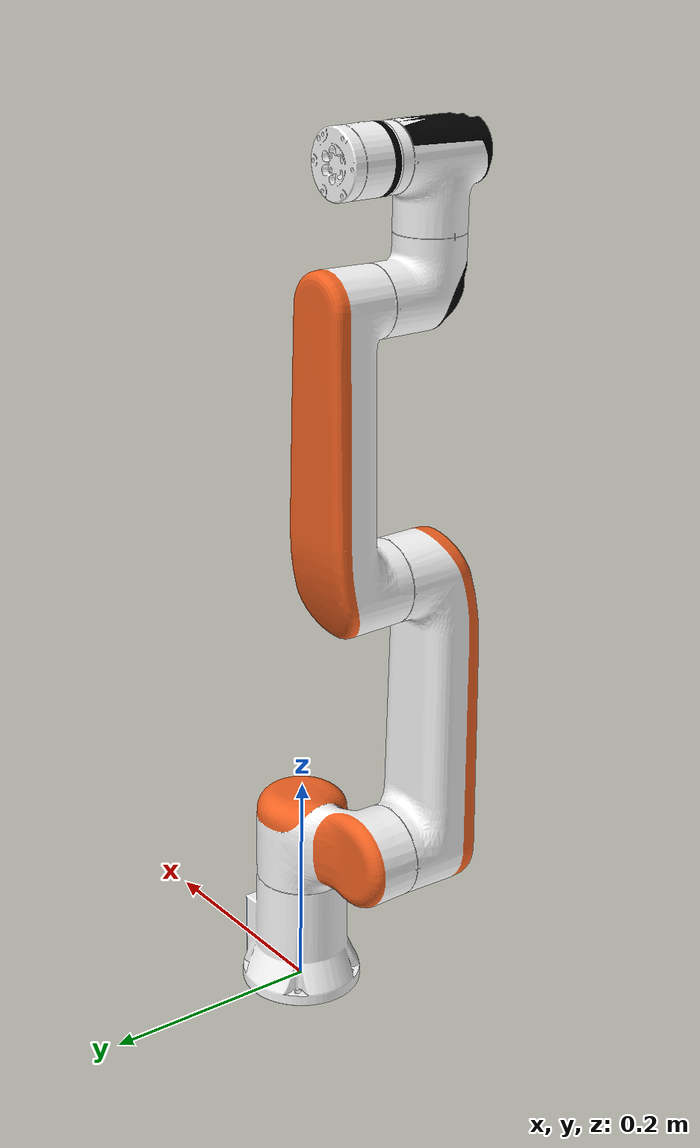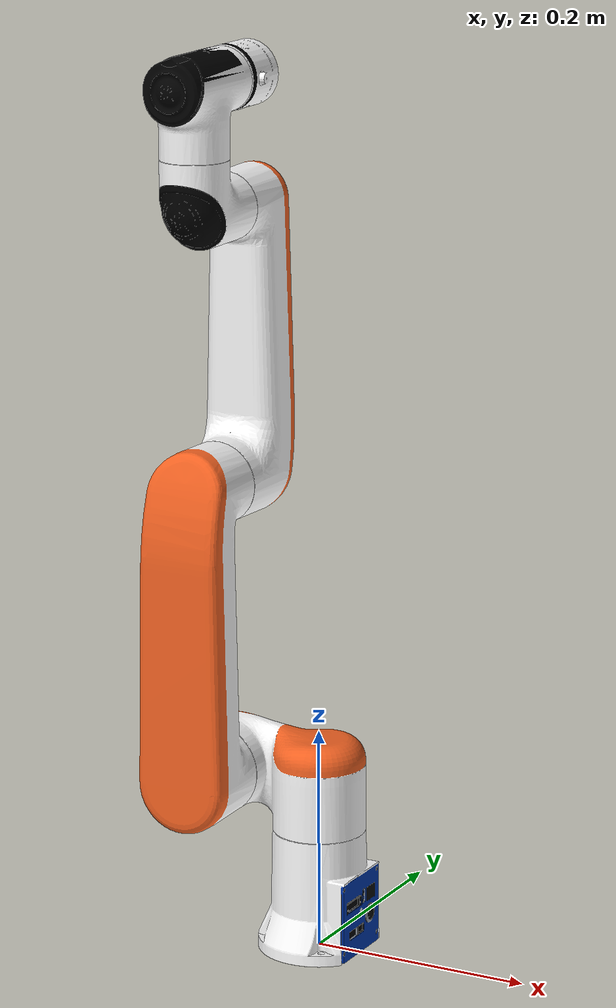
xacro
<?xml version='1.0' encoding='utf-8'?>
<robot name="rm_eco65_description">
  <link name="baselink">
    <inertial>
      <origin rpy="0 0 0" xyz="0.003036 -0.000732 0.035587" />
      <mass value="0.379" />
      <inertia ixx="0.00052904" ixy="6.208e-06" ixz="-4.25e-05" iyy="0.000554542" iyz="7.765e-06" izz="0.000472967" />
    </inertial>
    <collision>
      <origin rpy="0 0 0" xyz="0 0 0" />
      <geometry>
        <mesh filename="package://rm_description/meshes/rm_eco65_arm/baselink.STL" />
      </geometry>
    </collision>
    <visual>
      <origin xyz="0 0 0" rpy="0 0 0" />
      <geometry>
        <mesh filename="package://rm_description/meshes/dae/eco65/base_link.dae" />
      </geometry>
    </visual>
  </link>
  <link name="Link1">
    <inertial>
      <origin rpy="0 0 0" xyz="-0.011054685 2.7361459e-05 -0.03347252" />
      <mass value="1.50782" />
      <inertia ixx="0.0019588448" ixy="-2.3338144e-05" ixz="0.00053244189" iyy="0.0031016399" iyz="9.1355063e-06" izz="0.002425702" />
    </inertial>
    <collision>
      <origin rpy="0 0 0" xyz="0 0 0" />
      <geometry>
        <mesh filename="package://rm_description/meshes/rm_eco65_arm/Link_1.STL" />
      </geometry>
    </collision>
    <visual>
      <origin xyz="0 0 0" rpy="0 0 0" />
      <geometry>
        <mesh filename="package://rm_description/meshes/dae/eco65/link_1.dae" />
      </geometry>
    </visual>
  </link>
  <joint name="joint1" type="revolute">
    <origin rpy="0 0 0" xyz="0 0 0.1625" />
    <parent link="baselink" />
    <child link="Link1" />
    <axis xyz="0 0 1" />
    <limit effort="60" lower="-3.106686" upper="3.106686" velocity="3.141593" />
  </joint>
  <link name="Link2">
    <inertial>
      <origin rpy="0 0 0" xyz="-1.1827560982036e-05 0.0581820316859641 0.0523635875292498" />
      <mass value="2.0227481" />
      <inertia ixx="0.0173147479782545" ixy="-6.2090363142666e-06" ixz="2.96020913640401e-06" iyy="0.00227460292023923" iyz="-0.00144144918722487" izz="0.0172255442015063" />
    </inertial>
    <collision>
      <origin rpy="3.14158898038469 7.34641020661009e-06 1.5707963267814" xyz="0 0 0" />
      <geometry>
        <mesh filename="package://rm_description/meshes/rm_eco65_arm/Link_2.STL" />
      </geometry>
    </collision>
    <visual>
      <origin xyz="0 0 0" rpy="3.14158898038469 7.34641020661009e-06 1.5707963267814" />
      <geometry>
        <mesh filename="package://rm_description/meshes/dae/eco65/link_2.dae" />
      </geometry>
    </visual>
  </link>
  <joint name="joint2" type="revolute">
    <origin rpy="1.5708 0 0" xyz="-0.086 0 0" />
    <parent link="Link1" />
    <child link="Link2" />
    <axis xyz="3.67320510324953e-06 -7.3464102065635e-06 -0.999999999966269" />
    <limit effort="60" lower="-3.106686" upper="2.356194" velocity="3.141593" />
  </joint>
  <link name="Link3">
    <inertial>
      <origin rpy="0 0 0" xyz="0.0927608650369262 -9.35058669887521e-05 0.00181173169117229" />
      <mass value="1.8858232" />
      <inertia ixx="0.00191652381683187" ixy="-3.36456196501919e-06" ixz="-0.00169426703402793" iyy="0.0224831040748002" iyz="4.49340801680471e-06" izz="0.0218928120083679" />
    </inertial>
    <collision>
      <origin rpy="-1.10196153102445e-05 -7.34638322152925e-06 3.67327256545311e-06" xyz="0 0 0" />
      <geometry>
        <mesh filename="package://rm_description/meshes/rm_eco65_arm/Link_3.STL" />
      </geometry>
    </collision>
    <visual>
      <origin xyz="0 0 0" rpy="-1.10196153102445e-05 -7.34638322152925e-06 3.67327256545311e-06" />
      <geometry>
        <mesh filename="package://rm_description/meshes/dae/eco65/link_3.dae" />
      </geometry>
    </visual>
  </link>
  <joint name="joint3" type="revolute">
    <origin rpy="-3.14158530717959 0 1.5708" xyz="3.50802442650178e-12 0.259999999992984 -1.9100666536913e-06" />
    <parent link="Link2" />
    <child link="Link3" />
    <axis xyz="-7.34642369894967e-06 1.101958832465e-05 0.999999999912299" />
    <limit effort="30" lower="-2.792527" upper="2.530727" velocity="3.926991" />
  </joint>
  <link name="Link4">
    <inertial>
      <origin rpy="0 0 0" xyz="-4.01148883191065e-05 -0.0349601672193299 0.00380178317316994" />
      <mass value="0.57008114" />
      <inertia ixx="0.000497615349667958" ixy="5.35705039856691e-07" ixz="6.17233202862662e-07" iyy="0.000316732930736851" iyz="-7.576478576108e-05" izz="0.000466587199595189" />
    </inertial>
    <collision>
      <origin rpy="-7.3463427445208e-06 1.10196422946629e-05 3.67319161125999e-06" xyz="0 0 0" />
      <geometry>
        <mesh filename="package://rm_description/meshes/rm_eco65_arm/Link_4.STL" />
      </geometry>
    </collision>
    <visual>
      <origin xyz="0 0 0" rpy="-7.3463427445208e-06 1.10196422946629e-05 3.67319161125999e-06" />
      <geometry>
        <mesh filename="package://rm_description/meshes/dae/eco65/link_4.dae" />
      </geometry>
    </visual>
  </link>
  <joint name="joint4" type="revolute">
    <origin rpy="0 0 1.5708" xyz="0.240000432549332 2.32752055130155e-07 -0.0588782368628631" />
    <parent link="Link3" />
    <child link="Link4" />
    <axis xyz="1.10196153094966e-05 7.34638322169204e-06 0.999999999912299" />
    <limit effort="10" lower="-3.106686" upper="3.106686" velocity="3.926991" />
  </joint>
  <link name="Link5">
    <inertial>
      <origin rpy="0 0 0" xyz="-3.94947255713416e-05 0.0226471863250741 -0.00736581902916809" />
      <mass value="0.64138580" />
      <inertia ixx="0.000623392164126553" ixy="-5.34181904997698e-07" ixz="-5.63337361425283e-07" iyy="0.000393373805621096" iyz="-0.000113396956738583" izz="0.00055741652025235" />
    </inertial>
    <collision>
      <origin rpy="-7.34638322158019e-06 3.67315113369848e-06 -1.10196557870313e-05" xyz="0 0 0" />
      <geometry>
        <mesh filename="package://rm_description/meshes/rm_eco65_arm/Link_5.STL" />
      </geometry>
    </collision>
    <visual>
      <origin xyz="0 0 0" rpy="-7.34638322158019e-06 3.67315113369848e-06 -1.10196557870313e-05" />
      <geometry>
        <mesh filename="package://rm_description/meshes/dae/eco65/link_5.dae" />
      </geometry>
    </visual>
  </link>
  <joint name="joint5" type="revolute">
    <origin rpy="1.5708 0 0" xyz="4.04059982175579e-07 -0.10999999999629 8.08097701837738e-07" />
    <parent link="Link4" />
    <child link="Link5" />
    <axis xyz="3.67323208790056e-06 7.34634274417768e-06 0.999999999966269" />
    <limit effort="10" lower="-3.106686" upper="3.106686" velocity="3.926991" />
  </joint>
  <link name="Link6">
    <inertial>
      <origin rpy="0 0 0" xyz="0.000447725707649944 -0.000213552855705973 -0.0103357983658304" />
      <mass value="0.085705209" />
      <inertia ixx="3.30270919354927e-05" ixy="-2.54214741276868e-06" ixz="1.02639934585639e-07" iyy="3.02066550894742e-05" iyz="-8.39420734887784e-08" izz="5.14596739750329e-05" />
    </inertial>
    <collision>
      <origin rpy="-7.3463427445208e-06 1.10196422946629e-05 3.67319161125999e-06" xyz="0 0 0" />
      <geometry>
        <mesh filename="package://rm_description/meshes/rm_eco65_arm/Link_6fb.STL" />
      </geometry>
    </collision>
    <visual>
      <origin xyz="0 0 0" rpy="-7.3463427445208e-06 1.10196422946629e-05 3.67319161125999e-06" />
      <geometry>
        <mesh filename="package://rm_description/meshes/dae/eco65/link_6_fb.dae" />
      </geometry>
    </visual>
  </link>
  <joint name="joint6" type="revolute">
    <origin rpy="-1.5708 0 0" xyz="1.06559810516363e-06 0.0966999999915193 -7.1039525751845e-07" />
    <parent link="Link5" />
    <child link="Link6" />
    <axis xyz="-1.10196153094966e-05 -7.34638322169204e-06 -0.999999999912299" />
    <limit effort="10" lower="-6.283185" upper="6.283185" velocity="3.926991" />
  </joint>
</robot>
